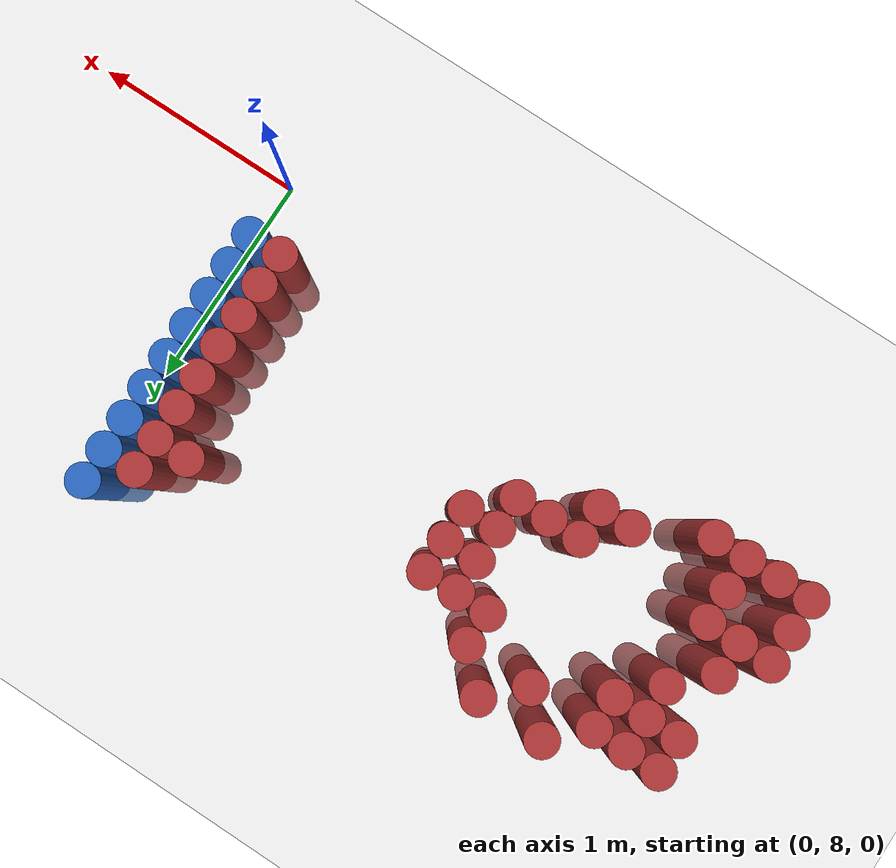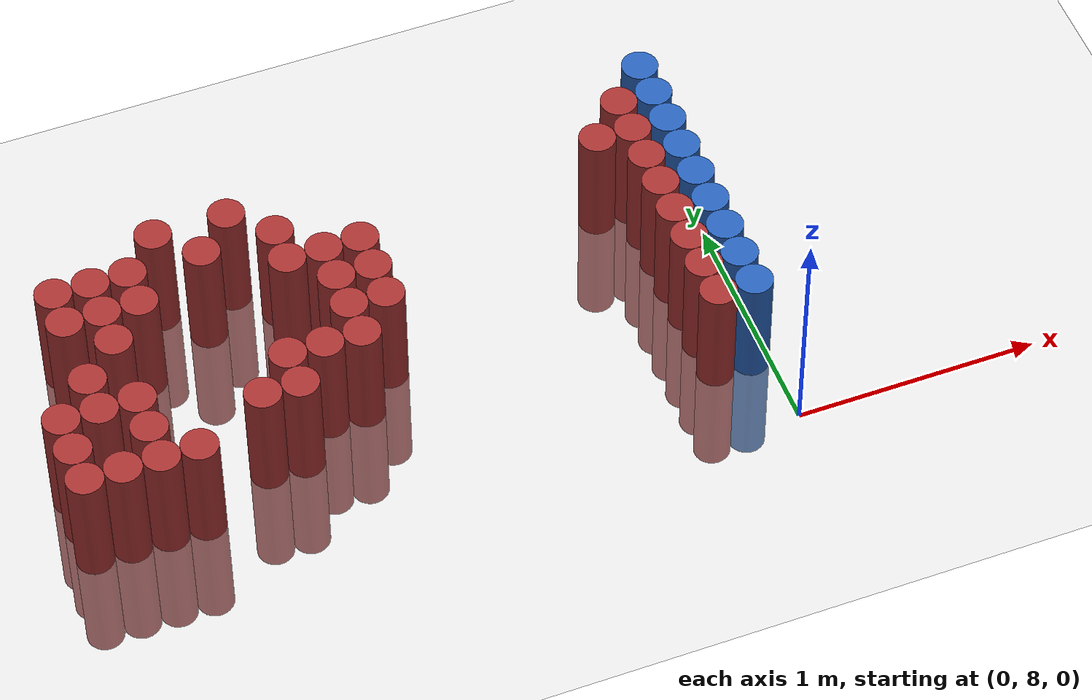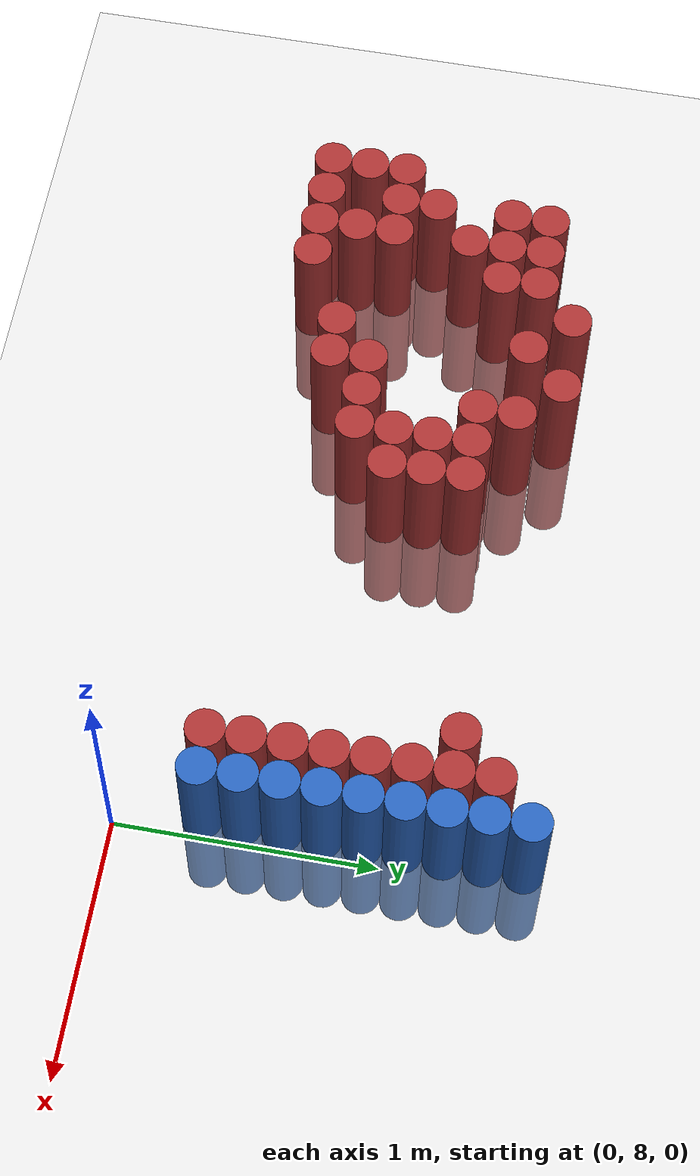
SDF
<sdf version="1.6">
 <world name="default">
  <model name="ground_plane">
   <static>1</static>
   <link name="link">
    <collision name="collision">
     <geometry><plane><normal>0 0 1</normal><size>100 100</size></plane></geometry>
     <surface><friction><ode><mu>100</mu><mu2>50</mu2></ode></friction></surface>
    </collision>
    <visual name="visual">
     <cast_shadows>0</cast_shadows>
     <geometry><plane><normal>0 0 1</normal><size>100 100</size></plane></geometry>
     <material>
      <script><uri>file://media/materials/scripts/gazebo.material</uri><name>Gazebo/Grey</name></script>
     </material>
    </visual>
   </link>
  </model>
  <model name="unit_cylinder_226">
   <static>1</static>
   <pose>-2.775000 8.325000 0.000000 0.000000 0.000000 0.000000</pose>
   <link name="link">
    <inertial>
     <mass>1</mass>
     <inertia><ixx>0.145833</ixx><ixy>0</ixy><ixz>0</ixz><iyy>0.145833</iyy><iyz>0</iyz><izz>0.125</izz></inertia>
    </inertial>
    <collision name="collision">
     <geometry><cylinder><radius>0.075000</radius><length>1</length></cylinder></geometry>
    </collision>
    <visual name="visual">
     <geometry><cylinder><radius>0.075000</radius><length>1</length></cylinder></geometry>
     <material>
      <ambient>0.648000 0.192000 0.192000 1</ambient>
      <diffuse>0.648000 0.192000 0.192000 1</diffuse>
     </material>
     <material>
      <script><name>Gazebo/Grey</name><uri>file://media/materials/scripts/gazebo.material</uri></script>
     </material>
    </visual>
   </link>
  </model>
  <model name="unit_cylinder_227">
   <static>1</static>
   <pose>-2.775000 8.475000 0.000000 0.000000 0.000000 0.000000</pose>
   <link name="link">
    <inertial>
     <mass>1</mass>
     <inertia><ixx>0.145833</ixx><ixy>0</ixy><ixz>0</ixz><iyy>0.145833</iyy><iyz>0</iyz><izz>0.125</izz></inertia>
    </inertial>
    <collision name="collision">
     <geometry><cylinder><radius>0.075000</radius><length>1</length></cylinder></geometry>
    </collision>
    <visual name="visual">
     <geometry><cylinder><radius>0.075000</radius><length>1</length></cylinder></geometry>
     <material>
      <ambient>0.648000 0.192000 0.192000 1</ambient>
      <diffuse>0.648000 0.192000 0.192000 1</diffuse>
     </material>
     <material>
      <script><name>Gazebo/Grey</name><uri>file://media/materials/scripts/gazebo.material</uri></script>
     </material>
    </visual>
   </link>
  </model>
  <model name="unit_cylinder_228">
   <static>1</static>
   <pose>-2.775000 8.625000 0.000000 0.000000 0.000000 0.000000</pose>
   <link name="link">
    <inertial>
     <mass>1</mass>
     <inertia><ixx>0.145833</ixx><ixy>0</ixy><ixz>0</ixz><iyy>0.145833</iyy><iyz>0</iyz><izz>0.125</izz></inertia>
    </inertial>
    <collision name="collision">
     <geometry><cylinder><radius>0.075000</radius><length>1</length></cylinder></geometry>
    </collision>
    <visual name="visual">
     <geometry><cylinder><radius>0.075000</radius><length>1</length></cylinder></geometry>
     <material>
      <ambient>0.648000 0.192000 0.192000 1</ambient>
      <diffuse>0.648000 0.192000 0.192000 1</diffuse>
     </material>
     <material>
      <script><name>Gazebo/Grey</name><uri>file://media/materials/scripts/gazebo.material</uri></script>
     </material>
    </visual>
   </link>
  </model>
  <model name="unit_cylinder_236">
   <static>1</static>
   <pose>-2.625000 8.325000 0.000000 0.000000 0.000000 0.000000</pose>
   <link name="link">
    <inertial>
     <mass>1</mass>
     <inertia><ixx>0.145833</ixx><ixy>0</ixy><ixz>0</ixz><iyy>0.145833</iyy><iyz>0</iyz><izz>0.125</izz></inertia>
    </inertial>
    <collision name="collision">
     <geometry><cylinder><radius>0.075000</radius><length>1</length></cylinder></geometry>
    </collision>
    <visual name="visual">
     <geometry><cylinder><radius>0.075000</radius><length>1</length></cylinder></geometry>
     <material>
      <ambient>0.648000 0.192000 0.192000 1</ambient>
      <diffuse>0.648000 0.192000 0.192000 1</diffuse>
     </material>
     <material>
      <script><name>Gazebo/Grey</name><uri>file://media/materials/scripts/gazebo.material</uri></script>
     </material>
    </visual>
   </link>
  </model>
  <model name="unit_cylinder_237">
   <static>1</static>
   <pose>-2.625000 8.625000 0.000000 0.000000 0.000000 0.000000</pose>
   <link name="link">
    <inertial>
     <mass>1</mass>
     <inertia><ixx>0.145833</ixx><ixy>0</ixy><ixz>0</ixz><iyy>0.145833</iyy><iyz>0</iyz><izz>0.125</izz></inertia>
    </inertial>
    <collision name="collision">
     <geometry><cylinder><radius>0.075000</radius><length>1</length></cylinder></geometry>
    </collision>
    <visual name="visual">
     <geometry><cylinder><radius>0.075000</radius><length>1</length></cylinder></geometry>
     <material>
      <ambient>0.648000 0.192000 0.192000 1</ambient>
      <diffuse>0.648000 0.192000 0.192000 1</diffuse>
     </material>
     <material>
      <script><name>Gazebo/Grey</name><uri>file://media/materials/scripts/gazebo.material</uri></script>
     </material>
    </visual>
   </link>
  </model>
  <model name="unit_cylinder_238">
   <static>1</static>
   <pose>-2.625000 8.775000 0.000000 0.000000 0.000000 0.000000</pose>
   <link name="link">
    <inertial>
     <mass>1</mass>
     <inertia><ixx>0.145833</ixx><ixy>0</ixy><ixz>0</ixz><iyy>0.145833</iyy><iyz>0</iyz><izz>0.125</izz></inertia>
    </inertial>
    <collision name="collision">
     <geometry><cylinder><radius>0.075000</radius><length>1</length></cylinder></geometry>
    </collision>
    <visual name="visual">
     <geometry><cylinder><radius>0.075000</radius><length>1</length></cylinder></geometry>
     <material>
      <ambient>0.648000 0.192000 0.192000 1</ambient>
      <diffuse>0.648000 0.192000 0.192000 1</diffuse>
     </material>
     <material>
      <script><name>Gazebo/Grey</name><uri>file://media/materials/scripts/gazebo.material</uri></script>
     </material>
    </visual>
   </link>
  </model>
  <model name="unit_cylinder_239">
   <static>1</static>
   <pose>-2.625000 9.075000 0.000000 0.000000 0.000000 0.000000</pose>
   <link name="link">
    <inertial>
     <mass>1</mass>
     <inertia><ixx>0.145833</ixx><ixy>0</ixy><ixz>0</ixz><iyy>0.145833</iyy><iyz>0</iyz><izz>0.125</izz></inertia>
    </inertial>
    <collision name="collision">
     <geometry><cylinder><radius>0.075000</radius><length>1</length></cylinder></geometry>
    </collision>
    <visual name="visual">
     <geometry><cylinder><radius>0.075000</radius><length>1</length></cylinder></geometry>
     <material>
      <ambient>0.648000 0.192000 0.192000 1</ambient>
      <diffuse>0.648000 0.192000 0.192000 1</diffuse>
     </material>
     <material>
      <script><name>Gazebo/Grey</name><uri>file://media/materials/scripts/gazebo.material</uri></script>
     </material>
    </visual>
   </link>
  </model>
  <model name="unit_cylinder_240">
   <static>1</static>
   <pose>-2.625000 9.225000 0.000000 0.000000 0.000000 0.000000</pose>
   <link name="link">
    <inertial>
     <mass>1</mass>
     <inertia><ixx>0.145833</ixx><ixy>0</ixy><ixz>0</ixz><iyy>0.145833</iyy><iyz>0</iyz><izz>0.125</izz></inertia>
    </inertial>
    <collision name="collision">
     <geometry><cylinder><radius>0.075000</radius><length>1</length></cylinder></geometry>
    </collision>
    <visual name="visual">
     <geometry><cylinder><radius>0.075000</radius><length>1</length></cylinder></geometry>
     <material>
      <ambient>0.648000 0.192000 0.192000 1</ambient>
      <diffuse>0.648000 0.192000 0.192000 1</diffuse>
     </material>
     <material>
      <script><name>Gazebo/Grey</name><uri>file://media/materials/scripts/gazebo.material</uri></script>
     </material>
    </visual>
   </link>
  </model>
  <model name="unit_cylinder_248">
   <static>1</static>
   <pose>-2.475000 8.325000 0.000000 0.000000 0.000000 0.000000</pose>
   <link name="link">
    <inertial>
     <mass>1</mass>
     <inertia><ixx>0.145833</ixx><ixy>0</ixy><ixz>0</ixz><iyy>0.145833</iyy><iyz>0</iyz><izz>0.125</izz></inertia>
    </inertial>
    <collision name="collision">
     <geometry><cylinder><radius>0.075000</radius><length>1</length></cylinder></geometry>
    </collision>
    <visual name="visual">
     <geometry><cylinder><radius>0.075000</radius><length>1</length></cylinder></geometry>
     <material>
      <ambient>0.648000 0.192000 0.192000 1</ambient>
      <diffuse>0.648000 0.192000 0.192000 1</diffuse>
     </material>
     <material>
      <script><name>Gazebo/Grey</name><uri>file://media/materials/scripts/gazebo.material</uri></script>
     </material>
    </visual>
   </link>
  </model>
  <model name="unit_cylinder_249">
   <static>1</static>
   <pose>-2.475000 8.475000 0.000000 0.000000 0.000000 0.000000</pose>
   <link name="link">
    <inertial>
     <mass>1</mass>
     <inertia><ixx>0.145833</ixx><ixy>0</ixy><ixz>0</ixz><iyy>0.145833</iyy><iyz>0</iyz><izz>0.125</izz></inertia>
    </inertial>
    <collision name="collision">
     <geometry><cylinder><radius>0.075000</radius><length>1</length></cylinder></geometry>
    </collision>
    <visual name="visual">
     <geometry><cylinder><radius>0.075000</radius><length>1</length></cylinder></geometry>
     <material>
      <ambient>0.648000 0.192000 0.192000 1</ambient>
      <diffuse>0.648000 0.192000 0.192000 1</diffuse>
     </material>
     <material>
      <script><name>Gazebo/Grey</name><uri>file://media/materials/scripts/gazebo.material</uri></script>
     </material>
    </visual>
   </link>
  </model>
  <model name="unit_cylinder_250">
   <static>1</static>
   <pose>-2.475000 8.625000 0.000000 0.000000 0.000000 0.000000</pose>
   <link name="link">
    <inertial>
     <mass>1</mass>
     <inertia><ixx>0.145833</ixx><ixy>0</ixy><ixz>0</ixz><iyy>0.145833</iyy><iyz>0</iyz><izz>0.125</izz></inertia>
    </inertial>
    <collision name="collision">
     <geometry><cylinder><radius>0.075000</radius><length>1</length></cylinder></geometry>
    </collision>
    <visual name="visual">
     <geometry><cylinder><radius>0.075000</radius><length>1</length></cylinder></geometry>
     <material>
      <ambient>0.648000 0.192000 0.192000 1</ambient>
      <diffuse>0.648000 0.192000 0.192000 1</diffuse>
     </material>
     <material>
      <script><name>Gazebo/Grey</name><uri>file://media/materials/scripts/gazebo.material</uri></script>
     </material>
    </visual>
   </link>
  </model>
  <model name="unit_cylinder_251">
   <static>1</static>
   <pose>-2.475000 8.925000 0.000000 0.000000 0.000000 0.000000</pose>
   <link name="link">
    <inertial>
     <mass>1</mass>
     <inertia><ixx>0.145833</ixx><ixy>0</ixy><ixz>0</ixz><iyy>0.145833</iyy><iyz>0</iyz><izz>0.125</izz></inertia>
    </inertial>
    <collision name="collision">
     <geometry><cylinder><radius>0.075000</radius><length>1</length></cylinder></geometry>
    </collision>
    <visual name="visual">
     <geometry><cylinder><radius>0.075000</radius><length>1</length></cylinder></geometry>
     <material>
      <ambient>0.648000 0.192000 0.192000 1</ambient>
      <diffuse>0.648000 0.192000 0.192000 1</diffuse>
     </material>
     <material>
      <script><name>Gazebo/Grey</name><uri>file://media/materials/scripts/gazebo.material</uri></script>
     </material>
    </visual>
   </link>
  </model>
  <model name="unit_cylinder_252">
   <static>1</static>
   <pose>-2.475000 9.075000 0.000000 0.000000 0.000000 0.000000</pose>
   <link name="link">
    <inertial>
     <mass>1</mass>
     <inertia><ixx>0.145833</ixx><ixy>0</ixy><ixz>0</ixz><iyy>0.145833</iyy><iyz>0</iyz><izz>0.125</izz></inertia>
    </inertial>
    <collision name="collision">
     <geometry><cylinder><radius>0.075000</radius><length>1</length></cylinder></geometry>
    </collision>
    <visual name="visual">
     <geometry><cylinder><radius>0.075000</radius><length>1</length></cylinder></geometry>
     <material>
      <ambient>0.648000 0.192000 0.192000 1</ambient>
      <diffuse>0.648000 0.192000 0.192000 1</diffuse>
     </material>
     <material>
      <script><name>Gazebo/Grey</name><uri>file://media/materials/scripts/gazebo.material</uri></script>
     </material>
    </visual>
   </link>
  </model>
  <model name="unit_cylinder_253">
   <static>1</static>
   <pose>-2.475000 9.225000 0.000000 0.000000 0.000000 0.000000</pose>
   <link name="link">
    <inertial>
     <mass>1</mass>
     <inertia><ixx>0.145833</ixx><ixy>0</ixy><ixz>0</ixz><iyy>0.145833</iyy><iyz>0</iyz><izz>0.125</izz></inertia>
    </inertial>
    <collision name="collision">
     <geometry><cylinder><radius>0.075000</radius><length>1</length></cylinder></geometry>
    </collision>
    <visual name="visual">
     <geometry><cylinder><radius>0.075000</radius><length>1</length></cylinder></geometry>
     <material>
      <ambient>0.648000 0.192000 0.192000 1</ambient>
      <diffuse>0.648000 0.192000 0.192000 1</diffuse>
     </material>
     <material>
      <script><name>Gazebo/Grey</name><uri>file://media/materials/scripts/gazebo.material</uri></script>
     </material>
    </visual>
   </link>
  </model>
  <model name="unit_cylinder_261">
   <static>1</static>
   <pose>-2.325000 8.325000 0.000000 0.000000 0.000000 0.000000</pose>
   <link name="link">
    <inertial>
     <mass>1</mass>
     <inertia><ixx>0.145833</ixx><ixy>0</ixy><ixz>0</ixz><iyy>0.145833</iyy><iyz>0</iyz><izz>0.125</izz></inertia>
    </inertial>
    <collision name="collision">
     <geometry><cylinder><radius>0.075000</radius><length>1</length></cylinder></geometry>
    </collision>
    <visual name="visual">
     <geometry><cylinder><radius>0.075000</radius><length>1</length></cylinder></geometry>
     <material>
      <ambient>0.648000 0.192000 0.192000 1</ambient>
      <diffuse>0.648000 0.192000 0.192000 1</diffuse>
     </material>
     <material>
      <script><name>Gazebo/Grey</name><uri>file://media/materials/scripts/gazebo.material</uri></script>
     </material>
    </visual>
   </link>
  </model>
  <model name="unit_cylinder_262">
   <static>1</static>
   <pose>-2.325000 9.075000 0.000000 0.000000 0.000000 0.000000</pose>
   <link name="link">
    <inertial>
     <mass>1</mass>
     <inertia><ixx>0.145833</ixx><ixy>0</ixy><ixz>0</ixz><iyy>0.145833</iyy><iyz>0</iyz><izz>0.125</izz></inertia>
    </inertial>
    <collision name="collision">
     <geometry><cylinder><radius>0.075000</radius><length>1</length></cylinder></geometry>
    </collision>
    <visual name="visual">
     <geometry><cylinder><radius>0.075000</radius><length>1</length></cylinder></geometry>
     <material>
      <ambient>0.648000 0.192000 0.192000 1</ambient>
      <diffuse>0.648000 0.192000 0.192000 1</diffuse>
     </material>
     <material>
      <script><name>Gazebo/Grey</name><uri>file://media/materials/scripts/gazebo.material</uri></script>
     </material>
    </visual>
   </link>
  </model>
  <model name="unit_cylinder_263">
   <static>1</static>
   <pose>-2.325000 9.225000 0.000000 0.000000 0.000000 0.000000</pose>
   <link name="link">
    <inertial>
     <mass>1</mass>
     <inertia><ixx>0.145833</ixx><ixy>0</ixy><ixz>0</ixz><iyy>0.145833</iyy><iyz>0</iyz><izz>0.125</izz></inertia>
    </inertial>
    <collision name="collision">
     <geometry><cylinder><radius>0.075000</radius><length>1</length></cylinder></geometry>
    </collision>
    <visual name="visual">
     <geometry><cylinder><radius>0.075000</radius><length>1</length></cylinder></geometry>
     <material>
      <ambient>0.648000 0.192000 0.192000 1</ambient>
      <diffuse>0.648000 0.192000 0.192000 1</diffuse>
     </material>
     <material>
      <script><name>Gazebo/Grey</name><uri>file://media/materials/scripts/gazebo.material</uri></script>
     </material>
    </visual>
   </link>
  </model>
  <model name="unit_cylinder_272">
   <static>1</static>
   <pose>-2.175000 9.375000 0.000000 0.000000 0.000000 0.000000</pose>
   <link name="link">
    <inertial>
     <mass>1</mass>
     <inertia><ixx>0.145833</ixx><ixy>0</ixy><ixz>0</ixz><iyy>0.145833</iyy><iyz>0</iyz><izz>0.125</izz></inertia>
    </inertial>
    <collision name="collision">
     <geometry><cylinder><radius>0.075000</radius><length>1</length></cylinder></geometry>
    </collision>
    <visual name="visual">
     <geometry><cylinder><radius>0.075000</radius><length>1</length></cylinder></geometry>
     <material>
      <ambient>0.648000 0.192000 0.192000 1</ambient>
      <diffuse>0.648000 0.192000 0.192000 1</diffuse>
     </material>
     <material>
      <script><name>Gazebo/Grey</name><uri>file://media/materials/scripts/gazebo.material</uri></script>
     </material>
    </visual>
   </link>
  </model>
  <model name="unit_cylinder_278">
   <static>1</static>
   <pose>-2.025000 8.475000 0.000000 0.000000 0.000000 0.000000</pose>
   <link name="link">
    <inertial>
     <mass>1</mass>
     <inertia><ixx>0.145833</ixx><ixy>0</ixy><ixz>0</ixz><iyy>0.145833</iyy><iyz>0</iyz><izz>0.125</izz></inertia>
    </inertial>
    <collision name="collision">
     <geometry><cylinder><radius>0.075000</radius><length>1</length></cylinder></geometry>
    </collision>
    <visual name="visual">
     <geometry><cylinder><radius>0.075000</radius><length>1</length></cylinder></geometry>
     <material>
      <ambient>0.648000 0.192000 0.192000 1</ambient>
      <diffuse>0.648000 0.192000 0.192000 1</diffuse>
     </material>
     <material>
      <script><name>Gazebo/Grey</name><uri>file://media/materials/scripts/gazebo.material</uri></script>
     </material>
    </visual>
   </link>
  </model>
  <model name="unit_cylinder_279">
   <static>1</static>
   <pose>-2.025000 9.225000 0.000000 0.000000 0.000000 0.000000</pose>
   <link name="link">
    <inertial>
     <mass>1</mass>
     <inertia><ixx>0.145833</ixx><ixy>0</ixy><ixz>0</ixz><iyy>0.145833</iyy><iyz>0</iyz><izz>0.125</izz></inertia>
    </inertial>
    <collision name="collision">
     <geometry><cylinder><radius>0.075000</radius><length>1</length></cylinder></geometry>
    </collision>
    <visual name="visual">
     <geometry><cylinder><radius>0.075000</radius><length>1</length></cylinder></geometry>
     <material>
      <ambient>0.648000 0.192000 0.192000 1</ambient>
      <diffuse>0.648000 0.192000 0.192000 1</diffuse>
     </material>
     <material>
      <script><name>Gazebo/Grey</name><uri>file://media/materials/scripts/gazebo.material</uri></script>
     </material>
    </visual>
   </link>
  </model>
  <model name="unit_cylinder_284">
   <static>1</static>
   <pose>-1.875000 8.475000 0.000000 0.000000 0.000000 0.000000</pose>
   <link name="link">
    <inertial>
     <mass>1</mass>
     <inertia><ixx>0.145833</ixx><ixy>0</ixy><ixz>0</ixz><iyy>0.145833</iyy><iyz>0</iyz><izz>0.125</izz></inertia>
    </inertial>
    <collision name="collision">
     <geometry><cylinder><radius>0.075000</radius><length>1</length></cylinder></geometry>
    </collision>
    <visual name="visual">
     <geometry><cylinder><radius>0.075000</radius><length>1</length></cylinder></geometry>
     <material>
      <ambient>0.648000 0.192000 0.192000 1</ambient>
      <diffuse>0.648000 0.192000 0.192000 1</diffuse>
     </material>
     <material>
      <script><name>Gazebo/Grey</name><uri>file://media/materials/scripts/gazebo.material</uri></script>
     </material>
    </visual>
   </link>
  </model>
  <model name="unit_cylinder_285">
   <static>1</static>
   <pose>-1.875000 8.625000 0.000000 0.000000 0.000000 0.000000</pose>
   <link name="link">
    <inertial>
     <mass>1</mass>
     <inertia><ixx>0.145833</ixx><ixy>0</ixy><ixz>0</ixz><iyy>0.145833</iyy><iyz>0</iyz><izz>0.125</izz></inertia>
    </inertial>
    <collision name="collision">
     <geometry><cylinder><radius>0.075000</radius><length>1</length></cylinder></geometry>
    </collision>
    <visual name="visual">
     <geometry><cylinder><radius>0.075000</radius><length>1</length></cylinder></geometry>
     <material>
      <ambient>0.648000 0.192000 0.192000 1</ambient>
      <diffuse>0.648000 0.192000 0.192000 1</diffuse>
     </material>
     <material>
      <script><name>Gazebo/Grey</name><uri>file://media/materials/scripts/gazebo.material</uri></script>
     </material>
    </visual>
   </link>
  </model>
  <model name="unit_cylinder_286">
   <static>1</static>
   <pose>-1.875000 9.375000 0.000000 0.000000 0.000000 0.000000</pose>
   <link name="link">
    <inertial>
     <mass>1</mass>
     <inertia><ixx>0.145833</ixx><ixy>0</ixy><ixz>0</ixz><iyy>0.145833</iyy><iyz>0</iyz><izz>0.125</izz></inertia>
    </inertial>
    <collision name="collision">
     <geometry><cylinder><radius>0.075000</radius><length>1</length></cylinder></geometry>
    </collision>
    <visual name="visual">
     <geometry><cylinder><radius>0.075000</radius><length>1</length></cylinder></geometry>
     <material>
      <ambient>0.648000 0.192000 0.192000 1</ambient>
      <diffuse>0.648000 0.192000 0.192000 1</diffuse>
     </material>
     <material>
      <script><name>Gazebo/Grey</name><uri>file://media/materials/scripts/gazebo.material</uri></script>
     </material>
    </visual>
   </link>
  </model>
  <model name="unit_cylinder_289">
   <static>1</static>
   <pose>-1.725000 8.625000 0.000000 0.000000 0.000000 0.000000</pose>
   <link name="link">
    <inertial>
     <mass>1</mass>
     <inertia><ixx>0.145833</ixx><ixy>0</ixy><ixz>0</ixz><iyy>0.145833</iyy><iyz>0</iyz><izz>0.125</izz></inertia>
    </inertial>
    <collision name="collision">
     <geometry><cylinder><radius>0.075000</radius><length>1</length></cylinder></geometry>
    </collision>
    <visual name="visual">
     <geometry><cylinder><radius>0.075000</radius><length>1</length></cylinder></geometry>
     <material>
      <ambient>0.648000 0.192000 0.192000 1</ambient>
      <diffuse>0.648000 0.192000 0.192000 1</diffuse>
     </material>
     <material>
      <script><name>Gazebo/Grey</name><uri>file://media/materials/scripts/gazebo.material</uri></script>
     </material>
    </visual>
   </link>
  </model>
  <model name="unit_cylinder_290">
   <static>1</static>
   <pose>-1.725000 9.075000 0.000000 0.000000 0.000000 0.000000</pose>
   <link name="link">
    <inertial>
     <mass>1</mass>
     <inertia><ixx>0.145833</ixx><ixy>0</ixy><ixz>0</ixz><iyy>0.145833</iyy><iyz>0</iyz><izz>0.125</izz></inertia>
    </inertial>
    <collision name="collision">
     <geometry><cylinder><radius>0.075000</radius><length>1</length></cylinder></geometry>
    </collision>
    <visual name="visual">
     <geometry><cylinder><radius>0.075000</radius><length>1</length></cylinder></geometry>
     <material>
      <ambient>0.648000 0.192000 0.192000 1</ambient>
      <diffuse>0.648000 0.192000 0.192000 1</diffuse>
     </material>
     <material>
      <script><name>Gazebo/Grey</name><uri>file://media/materials/scripts/gazebo.material</uri></script>
     </material>
    </visual>
   </link>
  </model>
  <model name="unit_cylinder_291">
   <static>1</static>
   <pose>-1.725000 9.225000 0.000000 0.000000 0.000000 0.000000</pose>
   <link name="link">
    <inertial>
     <mass>1</mass>
     <inertia><ixx>0.145833</ixx><ixy>0</ixy><ixz>0</ixz><iyy>0.145833</iyy><iyz>0</iyz><izz>0.125</izz></inertia>
    </inertial>
    <collision name="collision">
     <geometry><cylinder><radius>0.075000</radius><length>1</length></cylinder></geometry>
    </collision>
    <visual name="visual">
     <geometry><cylinder><radius>0.075000</radius><length>1</length></cylinder></geometry>
     <material>
      <ambient>0.648000 0.192000 0.192000 1</ambient>
      <diffuse>0.648000 0.192000 0.192000 1</diffuse>
     </material>
     <material>
      <script><name>Gazebo/Grey</name><uri>file://media/materials/scripts/gazebo.material</uri></script>
     </material>
    </visual>
   </link>
  </model>
  <model name="unit_cylinder_292">
   <static>1</static>
   <pose>-1.575000 8.625000 0.000000 0.000000 0.000000 0.000000</pose>
   <link name="link">
    <inertial>
     <mass>1</mass>
     <inertia><ixx>0.145833</ixx><ixy>0</ixy><ixz>0</ixz><iyy>0.145833</iyy><iyz>0</iyz><izz>0.125</izz></inertia>
    </inertial>
    <collision name="collision">
     <geometry><cylinder><radius>0.075000</radius><length>1</length></cylinder></geometry>
    </collision>
    <visual name="visual">
     <geometry><cylinder><radius>0.075000</radius><length>1</length></cylinder></geometry>
     <material>
      <ambient>0.648000 0.192000 0.192000 1</ambient>
      <diffuse>0.648000 0.192000 0.192000 1</diffuse>
     </material>
     <material>
      <script><name>Gazebo/Grey</name><uri>file://media/materials/scripts/gazebo.material</uri></script>
     </material>
    </visual>
   </link>
  </model>
  <model name="unit_cylinder_293">
   <static>1</static>
   <pose>-1.575000 8.775000 0.000000 0.000000 0.000000 0.000000</pose>
   <link name="link">
    <inertial>
     <mass>1</mass>
     <inertia><ixx>0.145833</ixx><ixy>0</ixy><ixz>0</ixz><iyy>0.145833</iyy><iyz>0</iyz><izz>0.125</izz></inertia>
    </inertial>
    <collision name="collision">
     <geometry><cylinder><radius>0.075000</radius><length>1</length></cylinder></geometry>
    </collision>
    <visual name="visual">
     <geometry><cylinder><radius>0.075000</radius><length>1</length></cylinder></geometry>
     <material>
      <ambient>0.648000 0.192000 0.192000 1</ambient>
      <diffuse>0.648000 0.192000 0.192000 1</diffuse>
     </material>
     <material>
      <script><name>Gazebo/Grey</name><uri>file://media/materials/scripts/gazebo.material</uri></script>
     </material>
    </visual>
   </link>
  </model>
  <model name="unit_cylinder_294">
   <static>1</static>
   <pose>-1.575000 8.925000 0.000000 0.000000 0.000000 0.000000</pose>
   <link name="link">
    <inertial>
     <mass>1</mass>
     <inertia><ixx>0.145833</ixx><ixy>0</ixy><ixz>0</ixz><iyy>0.145833</iyy><iyz>0</iyz><izz>0.125</izz></inertia>
    </inertial>
    <collision name="collision">
     <geometry><cylinder><radius>0.075000</radius><length>1</length></cylinder></geometry>
    </collision>
    <visual name="visual">
     <geometry><cylinder><radius>0.075000</radius><length>1</length></cylinder></geometry>
     <material>
      <ambient>0.648000 0.192000 0.192000 1</ambient>
      <diffuse>0.648000 0.192000 0.192000 1</diffuse>
     </material>
     <material>
      <script><name>Gazebo/Grey</name><uri>file://media/materials/scripts/gazebo.material</uri></script>
     </material>
    </visual>
   </link>
  </model>
  <model name="unit_cylinder_295">
   <static>1</static>
   <pose>-1.575000 9.075000 0.000000 0.000000 0.000000 0.000000</pose>
   <link name="link">
    <inertial>
     <mass>1</mass>
     <inertia><ixx>0.145833</ixx><ixy>0</ixy><ixz>0</ixz><iyy>0.145833</iyy><iyz>0</iyz><izz>0.125</izz></inertia>
    </inertial>
    <collision name="collision">
     <geometry><cylinder><radius>0.075000</radius><length>1</length></cylinder></geometry>
    </collision>
    <visual name="visual">
     <geometry><cylinder><radius>0.075000</radius><length>1</length></cylinder></geometry>
     <material>
      <ambient>0.648000 0.192000 0.192000 1</ambient>
      <diffuse>0.648000 0.192000 0.192000 1</diffuse>
     </material>
     <material>
      <script><name>Gazebo/Grey</name><uri>file://media/materials/scripts/gazebo.material</uri></script>
     </material>
    </visual>
   </link>
  </model>
  <model name="unit_cylinder_296">
   <static>1</static>
   <pose>-1.425000 8.775000 0.000000 0.000000 0.000000 0.000000</pose>
   <link name="link">
    <inertial>
     <mass>1</mass>
     <inertia><ixx>0.145833</ixx><ixy>0</ixy><ixz>0</ixz><iyy>0.145833</iyy><iyz>0</iyz><izz>0.125</izz></inertia>
    </inertial>
    <collision name="collision">
     <geometry><cylinder><radius>0.075000</radius><length>1</length></cylinder></geometry>
    </collision>
    <visual name="visual">
     <geometry><cylinder><radius>0.075000</radius><length>1</length></cylinder></geometry>
     <material>
      <ambient>0.648000 0.192000 0.192000 1</ambient>
      <diffuse>0.648000 0.192000 0.192000 1</diffuse>
     </material>
     <material>
      <script><name>Gazebo/Grey</name><uri>file://media/materials/scripts/gazebo.material</uri></script>
     </material>
    </visual>
   </link>
  </model>
  <model name="unit_cylinder_297">
   <static>1</static>
   <pose>-1.425000 8.925000 0.000000 0.000000 0.000000 0.000000</pose>
   <link name="link">
    <inertial>
     <mass>1</mass>
     <inertia><ixx>0.145833</ixx><ixy>0</ixy><ixz>0</ixz><iyy>0.145833</iyy><iyz>0</iyz><izz>0.125</izz></inertia>
    </inertial>
    <collision name="collision">
     <geometry><cylinder><radius>0.075000</radius><length>1</length></cylinder></geometry>
    </collision>
    <visual name="visual">
     <geometry><cylinder><radius>0.075000</radius><length>1</length></cylinder></geometry>
     <material>
      <ambient>0.648000 0.192000 0.192000 1</ambient>
      <diffuse>0.648000 0.192000 0.192000 1</diffuse>
     </material>
     <material>
      <script><name>Gazebo/Grey</name><uri>file://media/materials/scripts/gazebo.material</uri></script>
     </material>
    </visual>
   </link>
  </model>
  <model name="unit_cylinder_298">
   <static>1</static>
   <pose>-1.425000 9.075000 0.000000 0.000000 0.000000 0.000000</pose>
   <link name="link">
    <inertial>
     <mass>1</mass>
     <inertia><ixx>0.145833</ixx><ixy>0</ixy><ixz>0</ixz><iyy>0.145833</iyy><iyz>0</iyz><izz>0.125</izz></inertia>
    </inertial>
    <collision name="collision">
     <geometry><cylinder><radius>0.075000</radius><length>1</length></cylinder></geometry>
    </collision>
    <visual name="visual">
     <geometry><cylinder><radius>0.075000</radius><length>1</length></cylinder></geometry>
     <material>
      <ambient>0.648000 0.192000 0.192000 1</ambient>
      <diffuse>0.648000 0.192000 0.192000 1</diffuse>
     </material>
     <material>
      <script><name>Gazebo/Grey</name><uri>file://media/materials/scripts/gazebo.material</uri></script>
     </material>
    </visual>
   </link>
  </model>
  <model name="unit_cylinder_304">
   <static>1</static>
   <pose>-0.375000 9.225000 0.000000 0.000000 0.000000 0.000000</pose>
   <link name="link">
    <inertial>
     <mass>1</mass>
     <inertia><ixx>0.145833</ixx><ixy>0</ixy><ixz>0</ixz><iyy>0.145833</iyy><iyz>0</iyz><izz>0.125</izz></inertia>
    </inertial>
    <collision name="collision">
     <geometry><cylinder><radius>0.075000</radius><length>1</length></cylinder></geometry>
    </collision>
    <visual name="visual">
     <geometry><cylinder><radius>0.075000</radius><length>1</length></cylinder></geometry>
     <material>
      <ambient>0.648000 0.192000 0.192000 1</ambient>
      <diffuse>0.648000 0.192000 0.192000 1</diffuse>
     </material>
     <material>
      <script><name>Gazebo/Grey</name><uri>file://media/materials/scripts/gazebo.material</uri></script>
     </material>
    </visual>
   </link>
  </model>
  <model name="unit_cylinder_316">
   <static>1</static>
   <pose>-0.225000 8.325000 0.000000 0.000000 0.000000 0.000000</pose>
   <link name="link">
    <inertial>
     <mass>1</mass>
     <inertia><ixx>0.145833</ixx><ixy>0</ixy><ixz>0</ixz><iyy>0.145833</iyy><iyz>0</iyz><izz>0.125</izz></inertia>
    </inertial>
    <collision name="collision">
     <geometry><cylinder><radius>0.075000</radius><length>1</length></cylinder></geometry>
    </collision>
    <visual name="visual">
     <geometry><cylinder><radius>0.075000</radius><length>1</length></cylinder></geometry>
     <material>
      <ambient>0.648000 0.192000 0.192000 1</ambient>
      <diffuse>0.648000 0.192000 0.192000 1</diffuse>
     </material>
     <material>
      <script><name>Gazebo/Grey</name><uri>file://media/materials/scripts/gazebo.material</uri></script>
     </material>
    </visual>
   </link>
  </model>
  <model name="unit_cylinder_317">
   <static>1</static>
   <pose>-0.225000 8.475000 0.000000 0.000000 0.000000 0.000000</pose>
   <link name="link">
    <inertial>
     <mass>1</mass>
     <inertia><ixx>0.145833</ixx><ixy>0</ixy><ixz>0</ixz><iyy>0.145833</iyy><iyz>0</iyz><izz>0.125</izz></inertia>
    </inertial>
    <collision name="collision">
     <geometry><cylinder><radius>0.075000</radius><length>1</length></cylinder></geometry>
    </collision>
    <visual name="visual">
     <geometry><cylinder><radius>0.075000</radius><length>1</length></cylinder></geometry>
     <material>
      <ambient>0.648000 0.192000 0.192000 1</ambient>
      <diffuse>0.648000 0.192000 0.192000 1</diffuse>
     </material>
     <material>
      <script><name>Gazebo/Grey</name><uri>file://media/materials/scripts/gazebo.material</uri></script>
     </material>
    </visual>
   </link>
  </model>
  <model name="unit_cylinder_318">
   <static>1</static>
   <pose>-0.225000 8.625000 0.000000 0.000000 0.000000 0.000000</pose>
   <link name="link">
    <inertial>
     <mass>1</mass>
     <inertia><ixx>0.145833</ixx><ixy>0</ixy><ixz>0</ixz><iyy>0.145833</iyy><iyz>0</iyz><izz>0.125</izz></inertia>
    </inertial>
    <collision name="collision">
     <geometry><cylinder><radius>0.075000</radius><length>1</length></cylinder></geometry>
    </collision>
    <visual name="visual">
     <geometry><cylinder><radius>0.075000</radius><length>1</length></cylinder></geometry>
     <material>
      <ambient>0.648000 0.192000 0.192000 1</ambient>
      <diffuse>0.648000 0.192000 0.192000 1</diffuse>
     </material>
     <material>
      <script><name>Gazebo/Grey</name><uri>file://media/materials/scripts/gazebo.material</uri></script>
     </material>
    </visual>
   </link>
  </model>
  <model name="unit_cylinder_319">
   <static>1</static>
   <pose>-0.225000 8.775000 0.000000 0.000000 0.000000 0.000000</pose>
   <link name="link">
    <inertial>
     <mass>1</mass>
     <inertia><ixx>0.145833</ixx><ixy>0</ixy><ixz>0</ixz><iyy>0.145833</iyy><iyz>0</iyz><izz>0.125</izz></inertia>
    </inertial>
    <collision name="collision">
     <geometry><cylinder><radius>0.075000</radius><length>1</length></cylinder></geometry>
    </collision>
    <visual name="visual">
     <geometry><cylinder><radius>0.075000</radius><length>1</length></cylinder></geometry>
     <material>
      <ambient>0.648000 0.192000 0.192000 1</ambient>
      <diffuse>0.648000 0.192000 0.192000 1</diffuse>
     </material>
     <material>
      <script><name>Gazebo/Grey</name><uri>file://media/materials/scripts/gazebo.material</uri></script>
     </material>
    </visual>
   </link>
  </model>
  <model name="unit_cylinder_320">
   <static>1</static>
   <pose>-0.225000 8.925000 0.000000 0.000000 0.000000 0.000000</pose>
   <link name="link">
    <inertial>
     <mass>1</mass>
     <inertia><ixx>0.145833</ixx><ixy>0</ixy><ixz>0</ixz><iyy>0.145833</iyy><iyz>0</iyz><izz>0.125</izz></inertia>
    </inertial>
    <collision name="collision">
     <geometry><cylinder><radius>0.075000</radius><length>1</length></cylinder></geometry>
    </collision>
    <visual name="visual">
     <geometry><cylinder><radius>0.075000</radius><length>1</length></cylinder></geometry>
     <material>
      <ambient>0.648000 0.192000 0.192000 1</ambient>
      <diffuse>0.648000 0.192000 0.192000 1</diffuse>
     </material>
     <material>
      <script><name>Gazebo/Grey</name><uri>file://media/materials/scripts/gazebo.material</uri></script>
     </material>
    </visual>
   </link>
  </model>
  <model name="unit_cylinder_321">
   <static>1</static>
   <pose>-0.225000 9.075000 0.000000 0.000000 0.000000 0.000000</pose>
   <link name="link">
    <inertial>
     <mass>1</mass>
     <inertia><ixx>0.145833</ixx><ixy>0</ixy><ixz>0</ixz><iyy>0.145833</iyy><iyz>0</iyz><izz>0.125</izz></inertia>
    </inertial>
    <collision name="collision">
     <geometry><cylinder><radius>0.075000</radius><length>1</length></cylinder></geometry>
    </collision>
    <visual name="visual">
     <geometry><cylinder><radius>0.075000</radius><length>1</length></cylinder></geometry>
     <material>
      <ambient>0.648000 0.192000 0.192000 1</ambient>
      <diffuse>0.648000 0.192000 0.192000 1</diffuse>
     </material>
     <material>
      <script><name>Gazebo/Grey</name><uri>file://media/materials/scripts/gazebo.material</uri></script>
     </material>
    </visual>
   </link>
  </model>
  <model name="unit_cylinder_322">
   <static>1</static>
   <pose>-0.225000 9.225000 0.000000 0.000000 0.000000 0.000000</pose>
   <link name="link">
    <inertial>
     <mass>1</mass>
     <inertia><ixx>0.145833</ixx><ixy>0</ixy><ixz>0</ixz><iyy>0.145833</iyy><iyz>0</iyz><izz>0.125</izz></inertia>
    </inertial>
    <collision name="collision">
     <geometry><cylinder><radius>0.075000</radius><length>1</length></cylinder></geometry>
    </collision>
    <visual name="visual">
     <geometry><cylinder><radius>0.075000</radius><length>1</length></cylinder></geometry>
     <material>
      <ambient>0.648000 0.192000 0.192000 1</ambient>
      <diffuse>0.648000 0.192000 0.192000 1</diffuse>
     </material>
     <material>
      <script><name>Gazebo/Grey</name><uri>file://media/materials/scripts/gazebo.material</uri></script>
     </material>
    </visual>
   </link>
  </model>
  <model name="unit_cylinder_323">
   <static>1</static>
   <pose>-0.225000 9.375000 0.000000 0.000000 0.000000 0.000000</pose>
   <link name="link">
    <inertial>
     <mass>1</mass>
     <inertia><ixx>0.145833</ixx><ixy>0</ixy><ixz>0</ixz><iyy>0.145833</iyy><iyz>0</iyz><izz>0.125</izz></inertia>
    </inertial>
    <collision name="collision">
     <geometry><cylinder><radius>0.075000</radius><length>1</length></cylinder></geometry>
    </collision>
    <visual name="visual">
     <geometry><cylinder><radius>0.075000</radius><length>1</length></cylinder></geometry>
     <material>
      <ambient>0.648000 0.192000 0.192000 1</ambient>
      <diffuse>0.648000 0.192000 0.192000 1</diffuse>
     </material>
     <material>
      <script><name>Gazebo/Grey</name><uri>file://media/materials/scripts/gazebo.material</uri></script>
     </material>
    </visual>
   </link>
  </model>
  <model name="unit_cylinder_345">
   <static>1</static>
   <pose>-0.075000 8.325000 0.000000 0.000000 0.000000 0.000000</pose>
   <link name="link">
    <inertial>
     <mass>1</mass>
     <inertia><ixx>0.145833</ixx><ixy>0</ixy><ixz>0</ixz><iyy>0.145833</iyy><iyz>0</iyz><izz>0.125</izz></inertia>
    </inertial>
    <collision name="collision">
     <geometry><cylinder><radius>0.075000</radius><length>1</length></cylinder></geometry>
    </collision>
    <visual name="visual">
     <geometry><cylinder><radius>0.075000</radius><length>1</length></cylinder></geometry>
     <material>
      <ambient>0.152000 0.379000 0.720000 1</ambient>
      <diffuse>0.152000 0.379000 0.720000 1</diffuse>
     </material>
     <material>
      <script><name>Gazebo/Grey</name><uri>file://media/materials/scripts/gazebo.material</uri></script>
     </material>
    </visual>
   </link>
  </model>
  <model name="unit_cylinder_346">
   <static>1</static>
   <pose>-0.075000 8.475000 0.000000 0.000000 0.000000 0.000000</pose>
   <link name="link">
    <inertial>
     <mass>1</mass>
     <inertia><ixx>0.145833</ixx><ixy>0</ixy><ixz>0</ixz><iyy>0.145833</iyy><iyz>0</iyz><izz>0.125</izz></inertia>
    </inertial>
    <collision name="collision">
     <geometry><cylinder><radius>0.075000</radius><length>1</length></cylinder></geometry>
    </collision>
    <visual name="visual">
     <geometry><cylinder><radius>0.075000</radius><length>1</length></cylinder></geometry>
     <material>
      <ambient>0.152000 0.379000 0.720000 1</ambient>
      <diffuse>0.152000 0.379000 0.720000 1</diffuse>
     </material>
     <material>
      <script><name>Gazebo/Grey</name><uri>file://media/materials/scripts/gazebo.material</uri></script>
     </material>
    </visual>
   </link>
  </model>
  <model name="unit_cylinder_347">
   <static>1</static>
   <pose>-0.075000 8.625000 0.000000 0.000000 0.000000 0.000000</pose>
   <link name="link">
    <inertial>
     <mass>1</mass>
     <inertia><ixx>0.145833</ixx><ixy>0</ixy><ixz>0</ixz><iyy>0.145833</iyy><iyz>0</iyz><izz>0.125</izz></inertia>
    </inertial>
    <collision name="collision">
     <geometry><cylinder><radius>0.075000</radius><length>1</length></cylinder></geometry>
    </collision>
    <visual name="visual">
     <geometry><cylinder><radius>0.075000</radius><length>1</length></cylinder></geometry>
     <material>
      <ambient>0.152000 0.379000 0.720000 1</ambient>
      <diffuse>0.152000 0.379000 0.720000 1</diffuse>
     </material>
     <material>
      <script><name>Gazebo/Grey</name><uri>file://media/materials/scripts/gazebo.material</uri></script>
     </material>
    </visual>
   </link>
  </model>
  <model name="unit_cylinder_348">
   <static>1</static>
   <pose>-0.075000 8.775000 0.000000 0.000000 0.000000 0.000000</pose>
   <link name="link">
    <inertial>
     <mass>1</mass>
     <inertia><ixx>0.145833</ixx><ixy>0</ixy><ixz>0</ixz><iyy>0.145833</iyy><iyz>0</iyz><izz>0.125</izz></inertia>
    </inertial>
    <collision name="collision">
     <geometry><cylinder><radius>0.075000</radius><length>1</length></cylinder></geometry>
    </collision>
    <visual name="visual">
     <geometry><cylinder><radius>0.075000</radius><length>1</length></cylinder></geometry>
     <material>
      <ambient>0.152000 0.379000 0.720000 1</ambient>
      <diffuse>0.152000 0.379000 0.720000 1</diffuse>
     </material>
     <material>
      <script><name>Gazebo/Grey</name><uri>file://media/materials/scripts/gazebo.material</uri></script>
     </material>
    </visual>
   </link>
  </model>
  <model name="unit_cylinder_349">
   <static>1</static>
   <pose>-0.075000 8.925000 0.000000 0.000000 0.000000 0.000000</pose>
   <link name="link">
    <inertial>
     <mass>1</mass>
     <inertia><ixx>0.145833</ixx><ixy>0</ixy><ixz>0</ixz><iyy>0.145833</iyy><iyz>0</iyz><izz>0.125</izz></inertia>
    </inertial>
    <collision name="collision">
     <geometry><cylinder><radius>0.075000</radius><length>1</length></cylinder></geometry>
    </collision>
    <visual name="visual">
     <geometry><cylinder><radius>0.075000</radius><length>1</length></cylinder></geometry>
     <material>
      <ambient>0.152000 0.379000 0.720000 1</ambient>
      <diffuse>0.152000 0.379000 0.720000 1</diffuse>
     </material>
     <material>
      <script><name>Gazebo/Grey</name><uri>file://media/materials/scripts/gazebo.material</uri></script>
     </material>
    </visual>
   </link>
  </model>
  <model name="unit_cylinder_350">
   <static>1</static>
   <pose>-0.075000 9.075000 0.000000 0.000000 0.000000 0.000000</pose>
   <link name="link">
    <inertial>
     <mass>1</mass>
     <inertia><ixx>0.145833</ixx><ixy>0</ixy><ixz>0</ixz><iyy>0.145833</iyy><iyz>0</iyz><izz>0.125</izz></inertia>
    </inertial>
    <collision name="collision">
     <geometry><cylinder><radius>0.075000</radius><length>1</length></cylinder></geometry>
    </collision>
    <visual name="visual">
     <geometry><cylinder><radius>0.075000</radius><length>1</length></cylinder></geometry>
     <material>
      <ambient>0.152000 0.379000 0.720000 1</ambient>
      <diffuse>0.152000 0.379000 0.720000 1</diffuse>
     </material>
     <material>
      <script><name>Gazebo/Grey</name><uri>file://media/materials/scripts/gazebo.material</uri></script>
     </material>
    </visual>
   </link>
  </model>
  <model name="unit_cylinder_351">
   <static>1</static>
   <pose>-0.075000 9.225000 0.000000 0.000000 0.000000 0.000000</pose>
   <link name="link">
    <inertial>
     <mass>1</mass>
     <inertia><ixx>0.145833</ixx><ixy>0</ixy><ixz>0</ixz><iyy>0.145833</iyy><iyz>0</iyz><izz>0.125</izz></inertia>
    </inertial>
    <collision name="collision">
     <geometry><cylinder><radius>0.075000</radius><length>1</length></cylinder></geometry>
    </collision>
    <visual name="visual">
     <geometry><cylinder><radius>0.075000</radius><length>1</length></cylinder></geometry>
     <material>
      <ambient>0.152000 0.379000 0.720000 1</ambient>
      <diffuse>0.152000 0.379000 0.720000 1</diffuse>
     </material>
     <material>
      <script><name>Gazebo/Grey</name><uri>file://media/materials/scripts/gazebo.material</uri></script>
     </material>
    </visual>
   </link>
  </model>
  <model name="unit_cylinder_352">
   <static>1</static>
   <pose>-0.075000 9.375000 0.000000 0.000000 0.000000 0.000000</pose>
   <link name="link">
    <inertial>
     <mass>1</mass>
     <inertia><ixx>0.145833</ixx><ixy>0</ixy><ixz>0</ixz><iyy>0.145833</iyy><iyz>0</iyz><izz>0.125</izz></inertia>
    </inertial>
    <collision name="collision">
     <geometry><cylinder><radius>0.075000</radius><length>1</length></cylinder></geometry>
    </collision>
    <visual name="visual">
     <geometry><cylinder><radius>0.075000</radius><length>1</length></cylinder></geometry>
     <material>
      <ambient>0.152000 0.379000 0.720000 1</ambient>
      <diffuse>0.152000 0.379000 0.720000 1</diffuse>
     </material>
     <material>
      <script><name>Gazebo/Grey</name><uri>file://media/materials/scripts/gazebo.material</uri></script>
     </material>
    </visual>
   </link>
  </model>
  <model name="unit_cylinder_353">
   <static>1</static>
   <pose>-0.075000 9.525000 0.000000 0.000000 0.000000 0.000000</pose>
   <link name="link">
    <inertial>
     <mass>1</mass>
     <inertia><ixx>0.145833</ixx><ixy>0</ixy><ixz>0</ixz><iyy>0.145833</iyy><iyz>0</iyz><izz>0.125</izz></inertia>
    </inertial>
    <collision name="collision">
     <geometry><cylinder><radius>0.075000</radius><length>1</length></cylinder></geometry>
    </collision>
    <visual name="visual">
     <geometry><cylinder><radius>0.075000</radius><length>1</length></cylinder></geometry>
     <material>
      <ambient>0.152000 0.379000 0.720000 1</ambient>
      <diffuse>0.152000 0.379000 0.720000 1</diffuse>
     </material>
     <material>
      <script><name>Gazebo/Grey</name><uri>file://media/materials/scripts/gazebo.material</uri></script>
     </material>
    </visual>
   </link>
  </model>
 </world>
</sdf>
